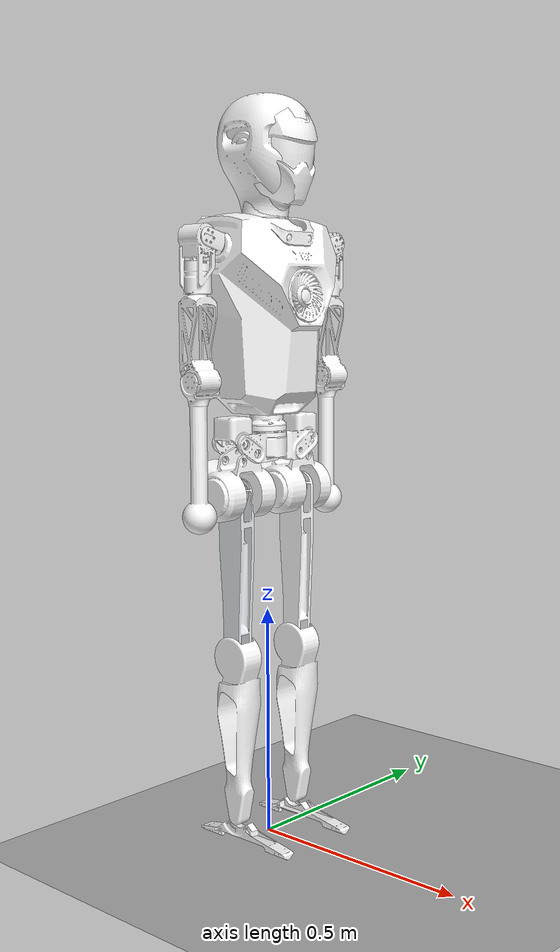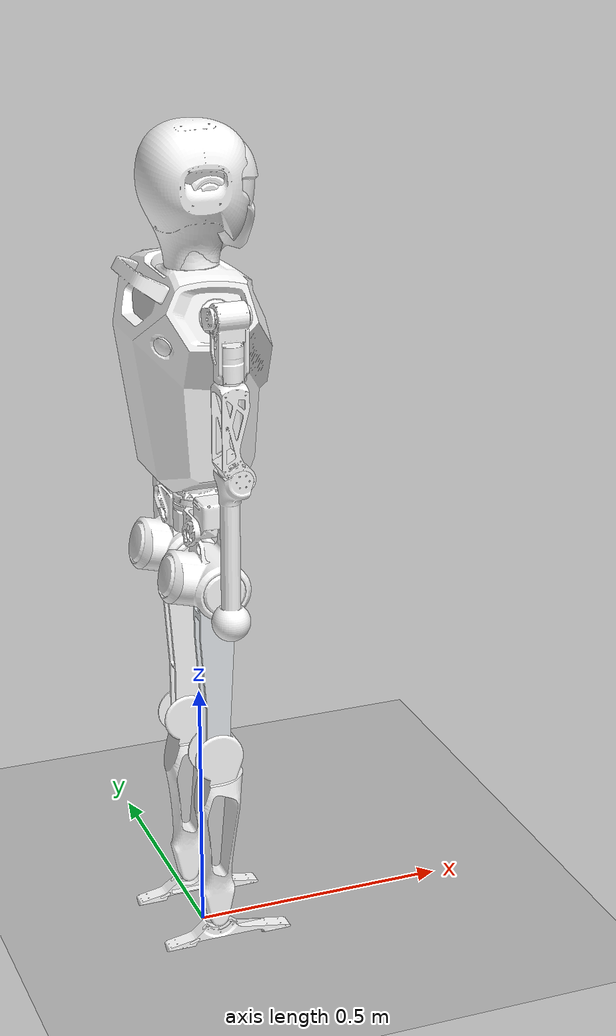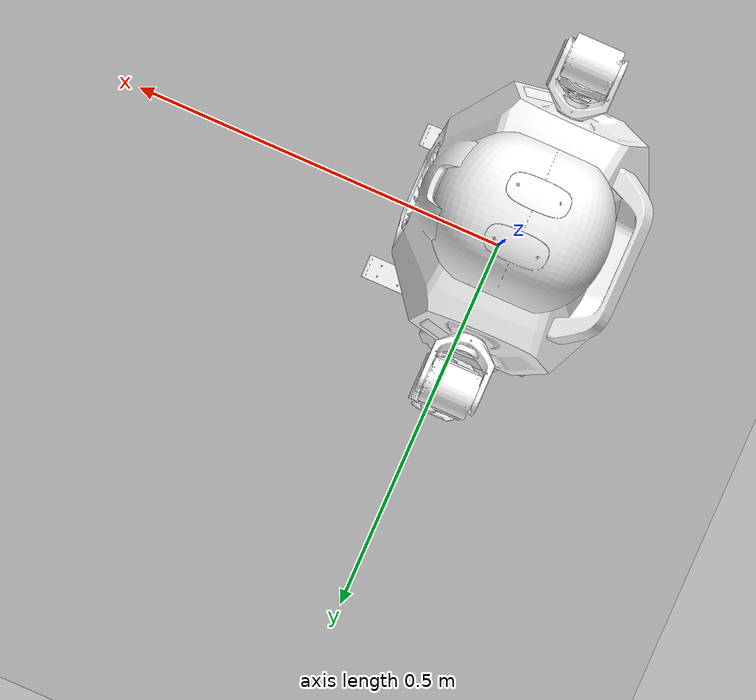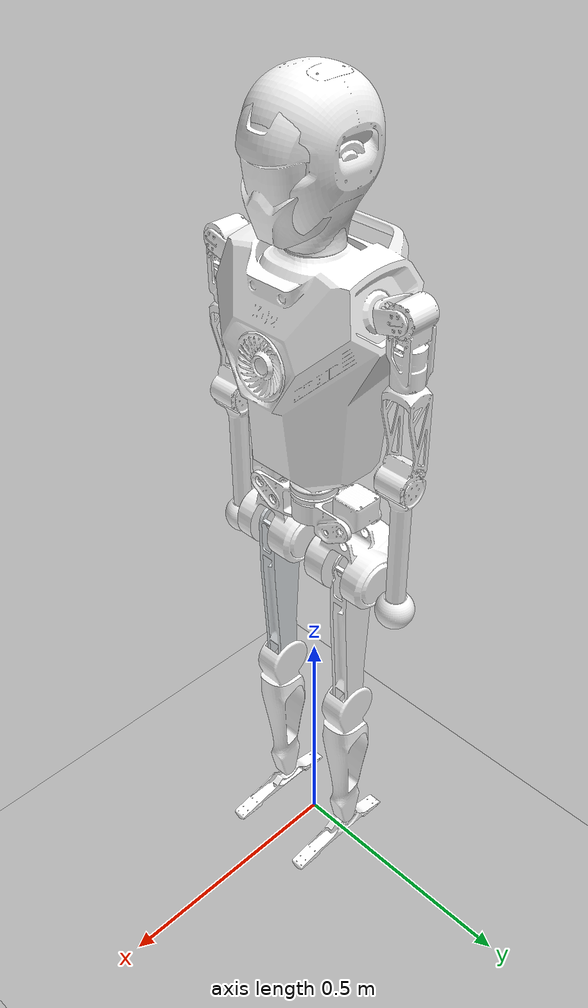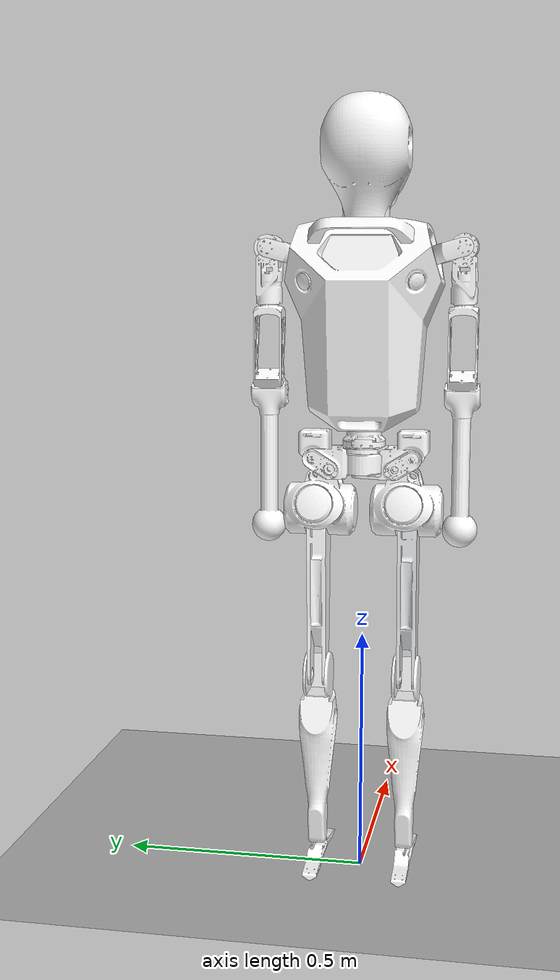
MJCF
<mujoco model="X02Lite">

  <compiler angle="radian" meshdir="./meshes/" />
  <size njmax="500" nconmax="100" />
  <visual>
    <quality shadowsize='4096'/>
    <map znear='0.05'/>
  </visual>
  <option timestep="0.001" integrator="RK4" gravity="0 0 -9.81">
    <flag   contact="enable" energy="enable" gravity="enable"/>
  </option>

  <default>
    <geom contype='0' conaffinity='0' condim='1'/>  <!--默认完全无碰撞摩擦-->
    <default class='collision'>
      <geom material='collision' contype='1'/>   <!--collision：只与地面碰撞摩擦-->
      <default class='collision-left'>
        <geom condim='1' contype='4' conaffinity='2'/>  <!--collision-left：与地面、右腿碰撞摩擦-->
      </default>
      <default class='collision-right'>
        <geom condim='1' contype='2' conaffinity='4'/>  <!--collision-right：与地面、左腿碰撞摩擦-->
      </default>
    </default>
  </default>

  <asset>
    <texture type='skybox' builtin='gradient' width='128' height='128' rgb1='0.4 0.6 0.8' rgb2='0 0 0'/>
    <texture name='plane' type='2d' builtin='checker' rgb1='0.6 0.6 0.6' rgb2='0.8 0.8 0.8' width='512' height='512'/>
    <material name='plane' reflectance='0.0' texture='plane' texrepeat='1 1' texuniform='true'/>

    <material name='collision' rgba='0.1 0.5 0.9 0'/> <!--collision rgba 无颜色-->
    <mesh name="base_link" file="base_link.STL"/>
    <mesh name="Head_Link" file="head_Link.STL"/>
    <mesh name="R_shoulder1_Link" file="R_shoulder1_Link.STL"/>
    <mesh name="R_shoulder2_Link" file="R_shoulder2_Link.STL"/>
    <mesh name="R_shoulder3_Link" file="R_shoulder3_Link.STL"/>
    <mesh name="R_elbow_Link" file="R_elbow_Link.STL"/>
    <mesh name="L_shoulder1_Link" file="L_shoulder1_Link.STL"/>
    <mesh name="L_shoulder2_Link" file="L_shoulder2_Link.STL"/>
    <mesh name="L_shoulder3_Link" file="L_shoulder3_Link.STL"/>
    <mesh name="L_elbow_Link" file="L_elbow_Link.STL"/>
    <mesh name="body-base_Link" file="body-base_Link.STL"/>
    <mesh name="Waist_yaw_Link" file="Waist_yaw_Link.STL"/>
    <mesh name="Hip_yaw_Link" file="Hip_yaw_Link.STL"/>
    <mesh name="L_hip_roll_Link" file="L_hip_roll_Link.STL"/>
    <mesh name="L_hip_pitch_Link" file="L_hip_pitch_Link.STL"/>
    <mesh name="L_knee_Link" file="L_knee_Link.STL"/>
    <mesh name="L_ankle_pitch_Link" file="L_ankle_pitch_Link.STL"/>
    <mesh name="R_hip_roll_Link" file="R_hip_roll_Link.STL"/>
    <mesh name="R_hip_pitch_Link" file="R_hip_pitch_Link.STL"/>
    <mesh name="R_knee_Link" file="R_knee_Link.STL"/>
    <mesh name="R_ankle_pitch_Link" file="R_ankle_pitch_Link.STL"/>
  </asset>

  <worldbody>
   <geom name='wp' pos='0 0 0' size='0 0 1' type='plane' material='plane' contype="0" conaffinity="15" condim='3'/>
  <light mode='trackcom' pos='0 0 5' dir='0 0 -1'/>
  <light directional='true' pos='0 0 3' dir='0 0 -1' diffuse='0.2 0.2 0.2' specular='0 0 0'/>
    <body name="body-base_Link" pos="0. 0. 0.96">
      <freejoint/>
      <inertial pos="-0.0021 0.0002  -0.0251"  mass="1" diaginertia="0.0009 0.001 0.0009"/>
      <geom type="mesh" rgba="1 1 1 1" mesh="body-base_Link"/>
      <geom type='capsule' size='0.05' fromto='0 0 -0.01   0 0 -0.04' class='collision'/>
      <body name="base_link" pos="-0.000 0.0 0.00 ">
        <inertial pos="-0.007 0 0.2083" mass="7" diaginertia="0.077 0.0593 0.0323"/>
        <site name="imu" pos="0 0 0.17"/>

        <geom type="mesh" rgba="1 1 1 1" mesh="base_link"/>
        <geom type='box' size='0.08 0.12 0.16' pos='-0.005 0 0.16' class='collision'/>
        <body name="Head_Link" pos="0 0 0.3535">
          <inertial pos="0.00722011 7.69418e-06 0.146175" quat="0.999444 -0.00058221 0.0333295 4.1327e-05" mass="1" diaginertia="0.0119804 0.00893356 0.00716491"/>
          <geom type="mesh" rgba="1 1 1 1" mesh="Head_Link"/>
        </body>
        <body name="R_shoulder1_Link" pos="0 -0.13801 0.30984" quat="0.448226 -0.584114 0.536841 0.411952">
          <inertial pos="6.4216e-05 6.4013e-06 -0.026704" quat="0.706449 0.706508 0.0292536 0.0303345" mass="0.08" diaginertia="5.06898e-05 3.7942e-05 2.27852e-05"/>
          <geom type="mesh" rgba="1 1 1 1" mesh="R_shoulder1_Link"/>
          <body name="R_shoulder2_Link" pos="0 0 -0.059" quat="0.696544 0.704325 -0.0626707 0.121758">
            <inertial pos="0.0425361 -0.000213321 0.000149626" quat="0.503071 0.5067 0.496387 0.493735" mass="0.8" diaginertia="0.000158247 0.000152297 0.000108199"/>
            <geom type="mesh" rgba="1 1 1 1" mesh="R_shoulder2_Link"/>
            <body name="R_shoulder3_Link" pos="0.114 0 0" quat="0.499998 0.5 0.500002 0.5">
              <inertial pos="-0.000241424 0.00495545 0.140338" quat="0.714035 -0.0393711 0.0340459 0.698172" mass="0.5" diaginertia="0.000124739 0.000119826 7.99128e-05"/>
              <geom type="mesh" rgba="1 1 1 1" mesh="R_shoulder3_Link"/>
              <body name="R_elbow_Link" pos="0 0.01 0.171" quat="-2.59734e-06 0.707108 2.59735e-06 0.707105">
                <inertial pos="0.21266 0.0123007 2.46881e-07" quat="0.501096 0.501116 0.498881 0.498902" mass="0.1" diaginertia="0.000362926 0.000349235 0.000125696"/>
                <geom type="mesh" rgba="1 1 1 1" mesh="R_elbow_Link"/>
              </body>
            </body>
          </body>
        </body>
        <body name="L_shoulder1_Link" pos="0 0.13801 0.309837" quat="-0.411937 -0.536847 -0.584128 0.448217">
          <inertial pos="6.4215e-05 6.4014e-06 -0.026704" quat="0.706449 0.706508 0.0292536 0.0303345" mass="0.08" diaginertia="5.06898e-05 3.7942e-05 2.27852e-05"/>
          <geom type="mesh" rgba="1 1 1 1" mesh="L_shoulder1_Link"/>
          <body name="L_shoulder2_Link" pos="0 0 -0.059" quat="0.696545 0.704324 -0.0626706 0.121757">
            <inertial pos="0.0425361 -0.000213321 0.000149626" quat="0.503071 0.5067 0.496387 0.493735" mass="0.8" diaginertia="0.000158247 0.000152297 0.000108199"/>
            <geom type="mesh" rgba="1 1 1 1" mesh="L_shoulder2_Link"/>
            <body name="L_shoulder3_Link" pos="0.114 0 0" quat="0.5 0.5 0.5 0.5">
              <inertial pos="0.000241424 -0.00495545 0.140338" quat="0.714035 0.0393711 -0.0340459 0.698172" mass="0.5" diaginertia="0.000124739 0.000119826 7.99128e-05"/>
              <geom type="mesh" rgba="1 1 1 1" mesh="L_shoulder3_Link"/>
              <body name="L_elbow_Link" pos="0 -0.01 0.171" quat="-2.59734e-06 0.707108 2.59735e-06 0.707105">
                <inertial pos="0.21266 -0.0123007 -2.47262e-07" quat="0.498881 0.498902 0.501096 0.501116" mass="0.1" diaginertia="0.000362926 0.000349235 0.000125696"/>
                <geom type="mesh" rgba="1 1 1 1" mesh="L_elbow_Link"/>
              </body>
            </body>
          </body>
        </body>
      </body>

      <body name="L_hip_yaw_Link" pos="0 0 -0.05825" quat="-2.59734e-06 -0.707105 -0.707108 -2.59735e-06">
        <inertial pos="49.142E-03 -0.759E-03 34.199E-03"  mass="1.6" diaginertia="1761.288E-06 4177.498E-06 4574.314E-06"/>
        <joint name="L_hip_yaw" pos="0 0 0" axis="0 0 -1" range="-1.05 1.05" armature="0.05" damping='0.1' limited='true' />
        <geom type="mesh" rgba="1 1 1 1" mesh="Waist_yaw_Link"/>
        <body name="L_hip_roll_Link" pos="0.066 0 0.0564" quat="0 0 0.707107 0.707107">
          <inertial pos="-0.0209084 0.0780905 -0.0206783" quat="0.597258 0.387398 0.512902 0.479727" mass="2.4" diaginertia="0.00398913 0.00304649 0.00275999"/>
          <joint name="L_hip_roll" pos="0 0 0" axis="0 0 1" range="-0.35 0.35" armature="0.22472" damping='0.1' limited='true' />
          <geom type="mesh" rgba="1 1 1 1" mesh="L_hip_roll_Link"/>
          <body name="L_hip_pitch_Link" pos="-0.025487 0.085848 0" quat="0.499998 0.5 0.500002 0.5">
            <inertial pos="0.16261 0.00035226 -0.0014882" quat="-0.00121274 0.704942 -0.000350202 0.709264" mass="0.7" diaginertia="0.00944864 0.00940221 0.000464561"/>
            <joint name="L_hip_pitch" pos="0 0 0" axis="0 0 1" range="-0.52 1.92" armature="0.12986" damping='0.1' limited='true' />
            <geom type="mesh" rgba="1 1 1 1" mesh="L_hip_pitch_Link"/>
            <body name="L_knee_Link" pos="0.35 0 0">
              <inertial pos="0.14558 0.0058044 -1.1235e-05" quat="0.0138574 0.707016 -0.0138787 0.706925" mass="0.6" diaginertia="0.0098811 0.00969852 0.00051769"/>
              <joint name="L_knee_pitch" pos="0 0 0" axis="0 0 1" range="-1.92 0.08" armature="0.04425" damping='0.1' limited='true' />
              <geom type="mesh" rgba="1 1 1 1" mesh="L_knee_Link"/>
              <body name="L_ankle_pitch_Link" pos="0.35 0 0">
                <inertial pos="0.042755 0.018037 -0.00041516" quat="0.704702 0.709455 -0.00377682 -0.00736308" mass="0.2" diaginertia="0.000223014 0.000220549 7.68935e-06"/>
                <joint name="L_ankle_pitch" pos="0 0 0" axis="0 0 -1" range="-1.3 1.3" armature="0.03073" damping='0.1' limited='true' />
                <geom type="mesh" rgba="1 1 1 1" mesh="L_ankle_pitch_Link"/>
                <geom type='capsule' size='0.02' fromto='0.03 0.08 0   0.03 -0.12 0' class='collision-left'/>
              </body>
            </body>
          </body>
        </body>
        <body name="R_hip_yaw_Link" pos="0 0 0.0545" >
          <inertial pos="-82.480E-03 -0.233E-03 -22.874E-03"  mass="0.9" diaginertia="1171.727E-06 1966.361E-06 1978.957E-06"/>
          <joint name="R_hip_yaw" pos="0 0 0" axis="0 0 1" range="-1.05 1.05" armature="0.05" damping='0.1' limited='true' />
          <geom type="mesh" rgba="1 1 1 1" mesh="Hip_yaw_Link"/>
          <body name="R_hip_roll_Link" pos="-0.066 0 0" quat="0.707107 0.707107 0 0">
            <inertial pos="-0.020908 0.07809 0.020678" quat="0.387416 0.597244 0.479715 0.512916" mass="2.4" diaginertia="0.00398916 0.0030465 0.00275994"/>
            <joint name="R_hip_roll" pos="0 0 0" axis="0 0 1" range="-0.35 0.35" armature="0.22472" damping='0.1' limited='true' />
            <geom type="mesh" rgba="1 1 1 1" mesh="R_hip_roll_Link"/>
            <body name="R_hip_pitch_Link" pos="-0.025487 0.085848 0" quat="0.499998 0.5 0.500002 0.5">
              <inertial pos="0.162612 -0.000352277 -0.00148825" quat="0.00121342 0.704942 0.000350869 0.709264" mass="0.7" diaginertia="0.00944868 0.00940223 0.000464558"/>
              <joint name="R_hip_pitch" pos="0 0 0" axis="0 0 -1" range="-0.52 1.92" armature="0.12986" damping='0.1' limited='true' />
              <geom type="mesh" rgba="0.898039 0.917647 0.929412 1" mesh="R_hip_pitch_Link"/>
              <body name="R_knee_Link" pos="0.35 0 0">
                <inertial pos="0.145581 -0.00580442 1.12058e-05" quat="-0.0138786 0.706926 0.0138574 0.707016" mass="0.6" diaginertia="0.0098811 0.00969853 0.000517693"/>
                <joint name="R_knee_pitch" pos="0 0 0" axis="0 0 -1" range="-1.92 0.08" armature="0.04425" damping='0.1' limited='true' />
                <geom type="mesh" rgba="1 1 1 1" mesh="R_knee_Link"/>
                <body name="R_ankle_pitch_Link" pos="0.35 0 0">
                  <inertial pos="0.042755 -0.0180374 -0.000508129" quat="0.709455 0.704702 0.00736498 0.00377516" mass="0.2" diaginertia="0.00022301 0.000220548 7.6894e-06"/>
                  <joint name="R_ankle_pitch" pos="0 0 0" axis="0 0 1" range="-1.3 1.3" armature="0.03073" damping='0.1' limited='true' />
                  <geom type="mesh" rgba="1 1 1 1" mesh="R_ankle_pitch_Link"/>
                  <geom type='capsule' size='0.02' fromto='0.03 0.08 0   0.03 -0.12 0' class='collision-right'/>
                </body>
              </body>
            </body>
          </body>
        </body>
      </body>
    </body>
  </worldbody>

  <actuator>

    <motor name="juL" joint="L_hip_yaw"      gear="1"   ctrlrange="-300 300" ctrllimited="true"/> <!-- Leg Left -->
    <motor name="jsL" joint="L_hip_roll"     gear="1"  ctrlrange="-300 300" ctrllimited="true"/>
    <motor name="jhL" joint="L_hip_pitch"    gear="1"   ctrlrange="-300 300" ctrllimited="true"/>
    <motor name="jkL" joint="L_knee_pitch"   gear="1"   ctrlrange="-300 300" ctrllimited="true"/>
    <motor name="jFL" joint="L_ankle_pitch"  gear="1" ctrlrange="-300 300" ctrllimited="true"/>

    <motor name="juR" joint="R_hip_yaw"      gear="1"   ctrlrange="-300 300" ctrllimited="true"/> <!-- Leg Right -->
    <motor name="jsR" joint="R_hip_roll"     gear="1"  ctrlrange="-300 300" ctrllimited="true"/>
    <motor name="jhR" joint="R_hip_pitch"    gear="1"   ctrlrange="-300 300" ctrllimited="true"/>
    <motor name="jkR" joint="R_knee_pitch"   gear="1"   ctrlrange="-300 300" ctrllimited="true"/>
    <motor name="jFR" joint="R_ankle_pitch"  gear="1" ctrlrange="-300 300" ctrllimited="true"/>

  </actuator>

  <sensor>
    <!-- 执行器的位置 -->
    <jointpos name="juLp" joint="L_hip_yaw"      noise="0.0"/> <!-- Leg Left -->
    <jointpos name="jsLp" joint="L_hip_roll"     noise="0.0"/>
    <jointpos name="jhLp" joint="L_hip_pitch"    noise="0.0"/>
    <jointpos name="jkLp" joint="L_knee_pitch"   noise="0.0"/>
    <jointpos name="jFLp" joint="L_ankle_pitch"  noise="0.0"/>

    <jointpos name="juRp" joint="R_hip_yaw"      noise="0.0"/> <!-- Leg Right -->
    <jointpos name="jsRp" joint="R_hip_roll"     noise="0.0"/>
    <jointpos name="jhRp" joint="R_hip_pitch"    noise="0.0"/>
    <jointpos name="jkRp" joint="R_knee_pitch"   noise="0.0"/>
    <jointpos name="jFRp" joint="R_ankle_pitch"  noise="0.0"/>

    <!-- 执行器的速度 -->
    <jointvel name="juLv" joint="L_hip_yaw"      noise="0.0"/> <!-- Leg Left -->
    <jointvel name="jsLv" joint="L_hip_roll"     noise="0.0"/>
    <jointvel name="jhLv" joint="L_hip_pitch"    noise="0.0"/>
    <jointvel name="jkLv" joint="L_knee_pitch"   noise="0.0"/>
    <jointvel name="jFLv" joint="L_ankle_pitch"  noise="0.0"/>

    <jointvel name="juRv" joint="R_hip_yaw"     noise="0.0"/> <!-- Leg Right -->
    <jointvel name="jsRv" joint="R_hip_roll"    noise="0.0"/>
    <jointvel name="jhRv" joint="R_hip_pitch"   noise="0.0"/>
    <jointvel name="jkRv" joint="R_knee_pitch"  noise="0.0"/>
    <jointvel name="jFRv" joint="R_ankle_pitch" noise="0.0"/>

    <!-- 执行器的扭矩电流 -->
    <actuatorfrc name="iuL" actuator="juL" noise="0.0"/> <!-- Leg Left -->
    <actuatorfrc name="isL" actuator="jsL" noise="0.0"/>
    <actuatorfrc name="ihL" actuator="jhL" noise="0.0"/>
    <actuatorfrc name="ikL" actuator="jkL" noise="0.0"/>
    <actuatorfrc name="iFL" actuator="jFL" noise="0.0"/>

    <actuatorfrc name="iuR" actuator="juR" noise="0.0"/> <!-- Leg Right -->
    <actuatorfrc name="isR" actuator="jsR" noise="0.0"/>
    <actuatorfrc name="ihR" actuator="jhR" noise="0.0"/>
    <actuatorfrc name="ikR" actuator="jkR" noise="0.0"/>
    <actuatorfrc name="iFR" actuator="jFR" noise="0.0"/>

    <!-- 身体的的姿态 -->
    <framequat     name='orientation' objtype='site' noise='0.001' objname='imu'/>
    <framepos     name='position' objtype='site' noise='0.001' objname='imu'/>
    <gyro          name='angular-velocity'    site='imu' noise='0.005' cutoff='34.9'/>
    <velocimeter   name='linear-velocity'     site='imu' noise='0.001' cutoff='30'/>
    <accelerometer name='linear-acceleration' site='imu' noise='0.005' cutoff='157'/>
    <magnetometer  name='magnetometer'        site='imu'/>
  </sensor>
</mujoco>
